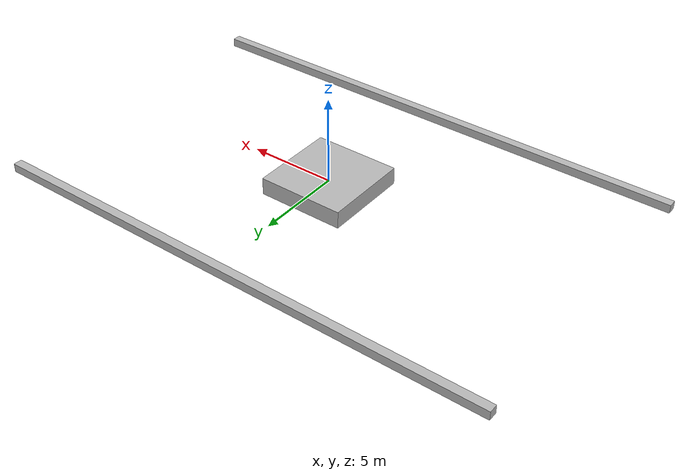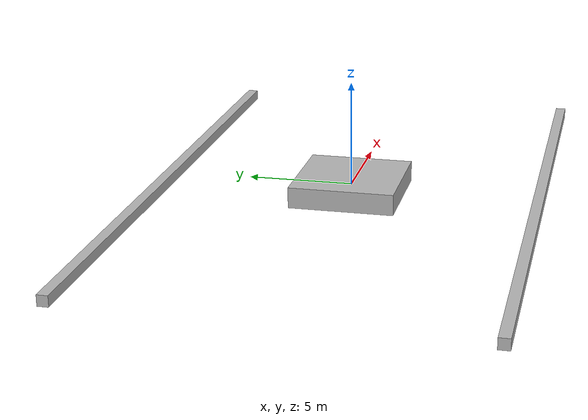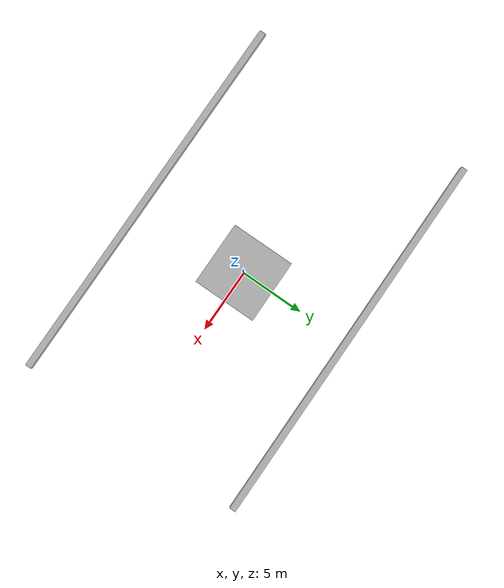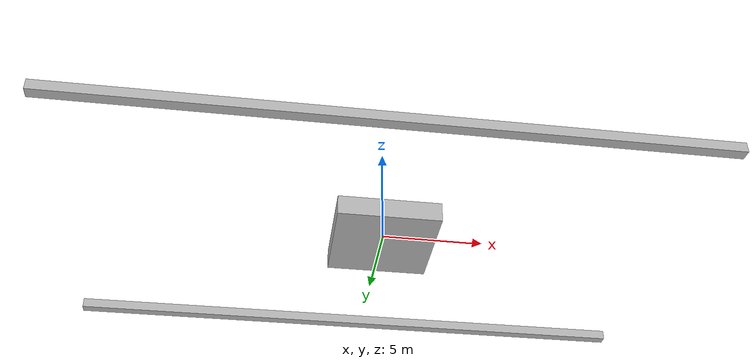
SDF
<sdf version='1.6'>
  <model name='barco_obs'>
    <link name='base_link'>
      <pose frame=''>0 0 0 0 -0 0</pose>
      <inertial>
        <pose frame=''>0 0 0 0 -0 0</pose>
        <mass>10</mass>
        <inertia>
          <ixx>3</ixx>
          <ixy>0</ixy>
          <ixz>0</ixz>
          <iyy>1</iyy>
          <iyz>0</iyz>
          <izz>3</izz>
        </inertia>
      </inertial>
      <collision name='base_link_collision'>
        <pose frame=''>0 0 0 1.5708 -0 0</pose>
        <geometry>
          <box>
            <size>5 1 5</size>
          </box>
        </geometry>
      </collision>
      <visual name='base_link_visual'>
        <pose frame=''>0 0 0 1.5708 -0 0</pose>
        <geometry>
          <box>
            <size>5 1 5</size>
          </box>
        </geometry>
      </visual>
    </link>
</model>

<model name='model1'>
    <link name='side_link1'>
      <pose frame=''>-0.53 0 -0.1 0 -0 0</pose>
      <inertial>
        <pose frame=''>0 -9 0 0 -0 0</pose>
        <mass>10</mass>
        <inertia>
          <ixx>3</ixx>
          <ixy>0</ixy>
          <ixz>0</ixz>
          <iyy>1</iyy>
          <iyz>0</iyz>
          <izz>3</izz>
        </inertia>
      </inertial>
      <collision name='side_link1_collision'>
        <pose frame=''>0 0 0 1.5708 -0 0</pose>
        <geometry>
          <box>
            <size>30 0.5 0.5</size>
          </box>
        </geometry>
      </collision>
      <visual name='side_link1_visual'>
        <pose frame=''>0 -9 0 1.5708 -0 0</pose>
        <geometry>
          <box>
            <size>30 0.5 0.5</size>
          </box>
        </geometry>
      </visual>
    </link>
</model>

<model name='model2'>
    <link name='side_link2'>
      <pose frame=''>-0.53 0 -0.1 0 -0 0</pose>
      <inertial>
        <pose frame=''>0 9 0 0 -0 0</pose>
        <mass>10</mass>
        <inertia>
          <ixx>3</ixx>
          <ixy>0</ixy>
          <ixz>0</ixz>
          <iyy>1</iyy>
          <iyz>0</iyz>
          <izz>3</izz>
        </inertia>
      </inertial>
      <collision name='side_link2_collision'>
        <pose frame=''>0 0 0 1.5708 -0 0</pose>
        <geometry>
          <box>
            <size>30 0.5 0.5</size>
          </box>
        </geometry>
      </collision>
      <visual name='side_link2_visual'>
        <pose frame=''>0 9 0 1.5708 -0 0</pose>
        <geometry>
          <box>
            <size>30 0.5 0.5</size>
          </box>
        </geometry>
      </visual>
    </link>
  </model>
</sdf>
